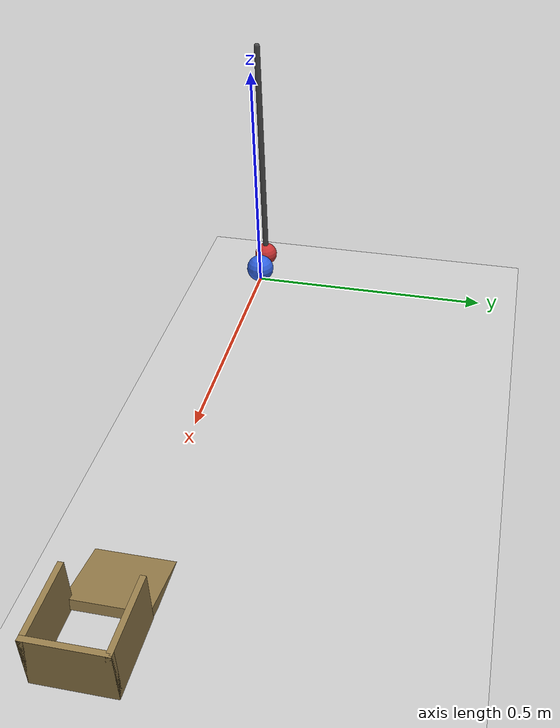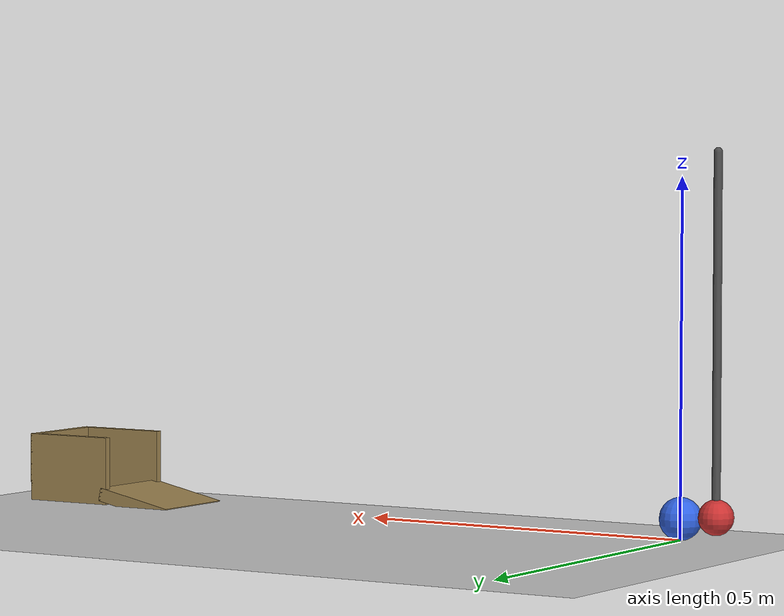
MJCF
<mujoco model="pendulum_ball_cup">
  <option timestep="0.002" gravity="0 0 -9.81"/>
  <visual>
    <global offwidth="1280" offheight="720"/>
  </visual>
  <worldbody>
    <light name="sun" pos="0.5 -1 2" dir="0 0.5 -1" directional="true"/>
    <geom name="floor" type="plane" pos="0 0 0" size="3 3 0.1" friction="0.6 0.005 0.0001" rgba="0.8 0.8 0.8 1"/>

    <body name="pendulum" pos="-0.0548 0 0.535">
      <joint name="pendulum_hinge" type="hinge" axis="0 1 0" pos="0 0 0"/>
      <geom name="pendulum_rod" type="capsule" fromto="0 0 0 0 0 -0.475" size="0.006" mass="0.05" rgba="0.3 0.3 0.3 1"/>
      <geom name="pendulum_bob" type="sphere" pos="0 0 -0.5" size="0.025" mass="1" rgba="0.8 0.2 0.2 1"/>
    </body>

    <body name="ball" pos="0 0 0.03">
      <freejoint name="ball_free"/>
      <geom name="ball" type="sphere" size="0.03" mass="0.05" friction="0.6 0.005 0.0001" rgba="0.2 0.4 0.9 1"/>
    </body>

    <body name="cup" pos="1 0 0">
      <geom name="cup_ramp" type="box" pos="-0.11796 0 0.00271" euler="0 -11.768 0" size="0.061288 0.07 0.01" friction="0.6 0.005 0.0001" rgba="0.6 0.5 0.3 1"/>
      <geom name="cup_back" type="box" pos="0.065 0 0.05" size="0.005 0.07 0.05" friction="0.6 0.005 0.0001" rgba="0.6 0.5 0.3 1"/>
      <geom name="cup_side_left" type="box" pos="0 0.065 0.05" size="0.07 0.005 0.05" friction="0.6 0.005 0.0001" rgba="0.6 0.5 0.3 1"/>
      <geom name="cup_side_right" type="box" pos="0 -0.065 0.05" size="0.07 0.005 0.05" friction="0.6 0.005 0.0001" rgba="0.6 0.5 0.3 1"/>
    </body>
  </worldbody>

  <keyframe>
    <key name="start" qpos="0.872665 0 0 0.03 1 0 0 0"/>
  </keyframe>
</mujoco>
